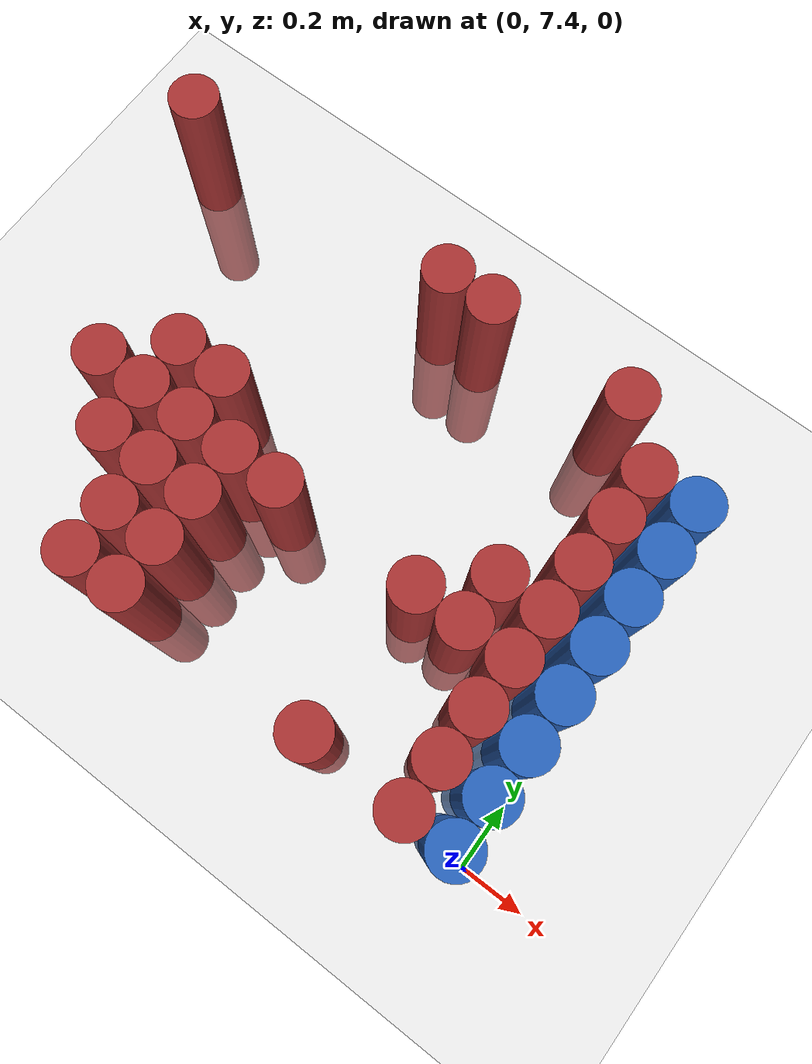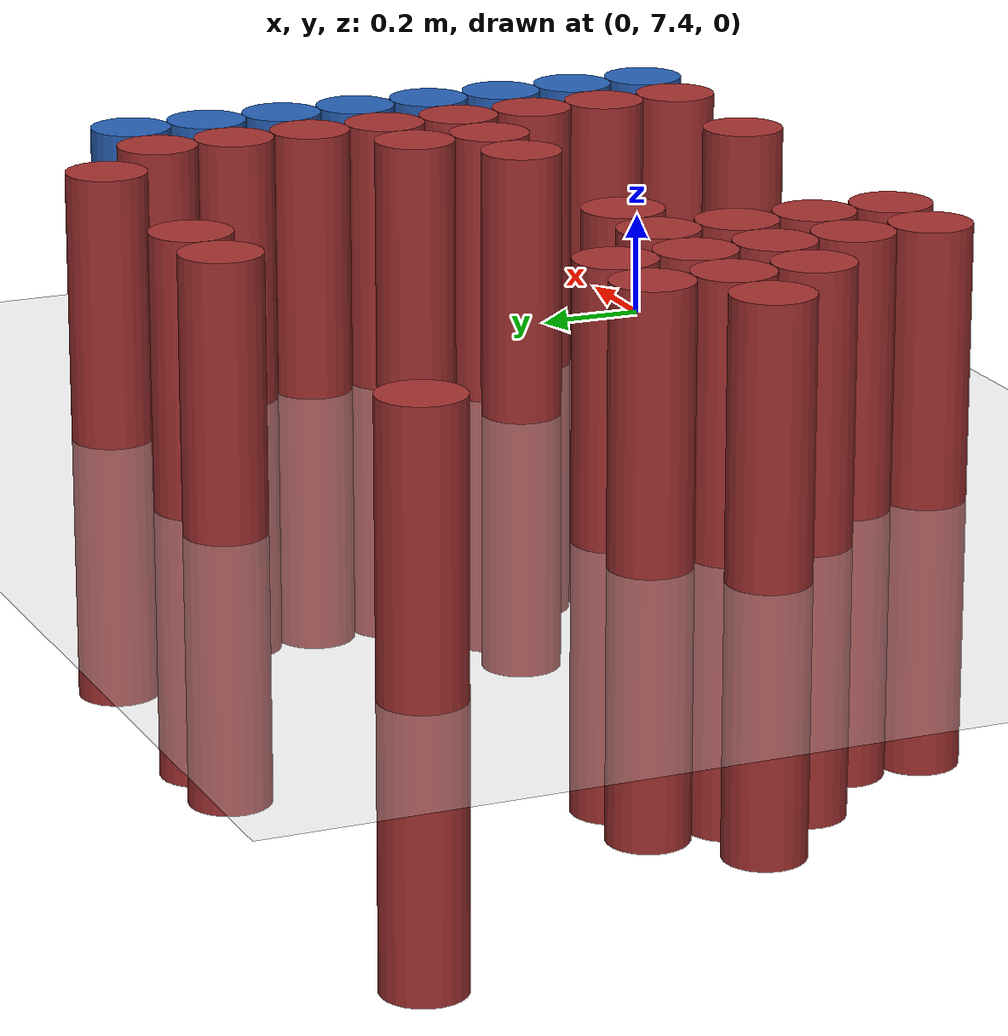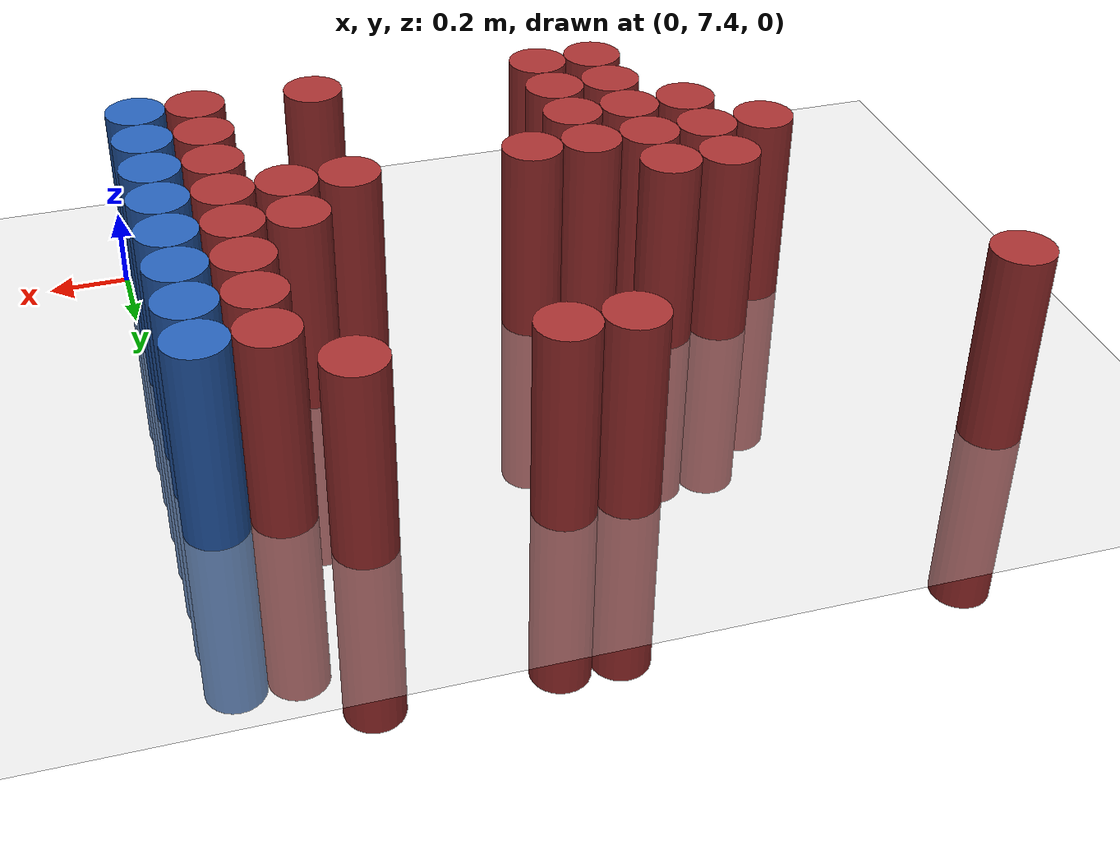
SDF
<sdf version="1.6">
 <world name="default">
  <model name="ground_plane">
   <static>1</static>
   <link name="link">
    <collision name="collision">
     <geometry><plane><normal>0 0 1</normal><size>100 100</size></plane></geometry>
     <surface><friction><ode><mu>100</mu><mu2>50</mu2></ode></friction></surface>
    </collision>
    <visual name="visual">
     <cast_shadows>0</cast_shadows>
     <geometry><plane><normal>0 0 1</normal><size>100 100</size></plane></geometry>
     <material>
      <script><uri>file://media/materials/scripts/gazebo.material</uri><name>Gazebo/Grey</name></script>
     </material>
    </visual>
   </link>
  </model>
  <model name="unit_cylinder_200">
   <static>1</static>
   <pose>-1.875000 8.625000 0.000000 0.000000 0.000000 0.000000</pose>
   <link name="link">
    <inertial>
     <mass>1</mass>
     <inertia><ixx>0.145833</ixx><ixy>0</ixy><ixz>0</ixz><iyy>0.145833</iyy><iyz>0</iyz><izz>0.125</izz></inertia>
    </inertial>
    <collision name="collision">
     <geometry><cylinder><radius>0.075000</radius><length>1</length></cylinder></geometry>
    </collision>
    <visual name="visual">
     <geometry><cylinder><radius>0.075000</radius><length>1</length></cylinder></geometry>
     <material>
      <ambient>0.648000 0.192000 0.192000 1</ambient>
      <diffuse>0.648000 0.192000 0.192000 1</diffuse>
     </material>
     <material>
      <script><name>Gazebo/Grey</name><uri>file://media/materials/scripts/gazebo.material</uri></script>
     </material>
    </visual>
    <sensor name="sensor_contact" type="contact"><contact><collision>collision</collision></contact></sensor>
   </link>
   <plugin filename="gz-sim-touchplugin-system" name="gz::sim::systems::TouchPlugin">
    <target>robot</target>
    <namespace>robot</namespace>
    <time>0.001</time>
    <enabled>true</enabled>
   </plugin>
  </model>
  <model name="unit_cylinder_213">
   <static>1</static>
   <pose>-1.575000 7.875000 0.000000 0.000000 0.000000 0.000000</pose>
   <link name="link">
    <inertial>
     <mass>1</mass>
     <inertia><ixx>0.145833</ixx><ixy>0</ixy><ixz>0</ixz><iyy>0.145833</iyy><iyz>0</iyz><izz>0.125</izz></inertia>
    </inertial>
    <collision name="collision">
     <geometry><cylinder><radius>0.075000</radius><length>1</length></cylinder></geometry>
    </collision>
    <visual name="visual">
     <geometry><cylinder><radius>0.075000</radius><length>1</length></cylinder></geometry>
     <material>
      <ambient>0.648000 0.192000 0.192000 1</ambient>
      <diffuse>0.648000 0.192000 0.192000 1</diffuse>
     </material>
     <material>
      <script><name>Gazebo/Grey</name><uri>file://media/materials/scripts/gazebo.material</uri></script>
     </material>
    </visual>
    <sensor name="sensor_contact" type="contact"><contact><collision>collision</collision></contact></sensor>
   </link>
   <plugin filename="gz-sim-touchplugin-system" name="gz::sim::systems::TouchPlugin">
    <target>robot</target>
    <namespace>robot</namespace>
    <time>0.001</time>
    <enabled>true</enabled>
   </plugin>
  </model>
  <model name="unit_cylinder_223">
   <static>1</static>
   <pose>-1.425000 7.725000 0.000000 0.000000 0.000000 0.000000</pose>
   <link name="link">
    <inertial>
     <mass>1</mass>
     <inertia><ixx>0.145833</ixx><ixy>0</ixy><ixz>0</ixz><iyy>0.145833</iyy><iyz>0</iyz><izz>0.125</izz></inertia>
    </inertial>
    <collision name="collision">
     <geometry><cylinder><radius>0.075000</radius><length>1</length></cylinder></geometry>
    </collision>
    <visual name="visual">
     <geometry><cylinder><radius>0.075000</radius><length>1</length></cylinder></geometry>
     <material>
      <ambient>0.648000 0.192000 0.192000 1</ambient>
      <diffuse>0.648000 0.192000 0.192000 1</diffuse>
     </material>
     <material>
      <script><name>Gazebo/Grey</name><uri>file://media/materials/scripts/gazebo.material</uri></script>
     </material>
    </visual>
    <sensor name="sensor_contact" type="contact"><contact><collision>collision</collision></contact></sensor>
   </link>
   <plugin filename="gz-sim-touchplugin-system" name="gz::sim::systems::TouchPlugin">
    <target>robot</target>
    <namespace>robot</namespace>
    <time>0.001</time>
    <enabled>true</enabled>
   </plugin>
  </model>
  <model name="unit_cylinder_224">
   <static>1</static>
   <pose>-1.425000 7.875000 0.000000 0.000000 0.000000 0.000000</pose>
   <link name="link">
    <inertial>
     <mass>1</mass>
     <inertia><ixx>0.145833</ixx><ixy>0</ixy><ixz>0</ixz><iyy>0.145833</iyy><iyz>0</iyz><izz>0.125</izz></inertia>
    </inertial>
    <collision name="collision">
     <geometry><cylinder><radius>0.075000</radius><length>1</length></cylinder></geometry>
    </collision>
    <visual name="visual">
     <geometry><cylinder><radius>0.075000</radius><length>1</length></cylinder></geometry>
     <material>
      <ambient>0.648000 0.192000 0.192000 1</ambient>
      <diffuse>0.648000 0.192000 0.192000 1</diffuse>
     </material>
     <material>
      <script><name>Gazebo/Grey</name><uri>file://media/materials/scripts/gazebo.material</uri></script>
     </material>
    </visual>
    <sensor name="sensor_contact" type="contact"><contact><collision>collision</collision></contact></sensor>
   </link>
   <plugin filename="gz-sim-touchplugin-system" name="gz::sim::systems::TouchPlugin">
    <target>robot</target>
    <namespace>robot</namespace>
    <time>0.001</time>
    <enabled>true</enabled>
   </plugin>
  </model>
  <model name="unit_cylinder_225">
   <static>1</static>
   <pose>-1.425000 8.025000 0.000000 0.000000 0.000000 0.000000</pose>
   <link name="link">
    <inertial>
     <mass>1</mass>
     <inertia><ixx>0.145833</ixx><ixy>0</ixy><ixz>0</ixz><iyy>0.145833</iyy><iyz>0</iyz><izz>0.125</izz></inertia>
    </inertial>
    <collision name="collision">
     <geometry><cylinder><radius>0.075000</radius><length>1</length></cylinder></geometry>
    </collision>
    <visual name="visual">
     <geometry><cylinder><radius>0.075000</radius><length>1</length></cylinder></geometry>
     <material>
      <ambient>0.648000 0.192000 0.192000 1</ambient>
      <diffuse>0.648000 0.192000 0.192000 1</diffuse>
     </material>
     <material>
      <script><name>Gazebo/Grey</name><uri>file://media/materials/scripts/gazebo.material</uri></script>
     </material>
    </visual>
    <sensor name="sensor_contact" type="contact"><contact><collision>collision</collision></contact></sensor>
   </link>
   <plugin filename="gz-sim-touchplugin-system" name="gz::sim::systems::TouchPlugin">
    <target>robot</target>
    <namespace>robot</namespace>
    <time>0.001</time>
    <enabled>true</enabled>
   </plugin>
  </model>
  <model name="unit_cylinder_231">
   <static>1</static>
   <pose>-1.275000 7.425000 0.000000 0.000000 0.000000 0.000000</pose>
   <link name="link">
    <inertial>
     <mass>1</mass>
     <inertia><ixx>0.145833</ixx><ixy>0</ixy><ixz>0</ixz><iyy>0.145833</iyy><iyz>0</iyz><izz>0.125</izz></inertia>
    </inertial>
    <collision name="collision">
     <geometry><cylinder><radius>0.075000</radius><length>1</length></cylinder></geometry>
    </collision>
    <visual name="visual">
     <geometry><cylinder><radius>0.075000</radius><length>1</length></cylinder></geometry>
     <material>
      <ambient>0.648000 0.192000 0.192000 1</ambient>
      <diffuse>0.648000 0.192000 0.192000 1</diffuse>
     </material>
     <material>
      <script><name>Gazebo/Grey</name><uri>file://media/materials/scripts/gazebo.material</uri></script>
     </material>
    </visual>
    <sensor name="sensor_contact" type="contact"><contact><collision>collision</collision></contact></sensor>
   </link>
   <plugin filename="gz-sim-touchplugin-system" name="gz::sim::systems::TouchPlugin">
    <target>robot</target>
    <namespace>robot</namespace>
    <time>0.001</time>
    <enabled>true</enabled>
   </plugin>
  </model>
  <model name="unit_cylinder_232">
   <static>1</static>
   <pose>-1.275000 7.575000 0.000000 0.000000 0.000000 0.000000</pose>
   <link name="link">
    <inertial>
     <mass>1</mass>
     <inertia><ixx>0.145833</ixx><ixy>0</ixy><ixz>0</ixz><iyy>0.145833</iyy><iyz>0</iyz><izz>0.125</izz></inertia>
    </inertial>
    <collision name="collision">
     <geometry><cylinder><radius>0.075000</radius><length>1</length></cylinder></geometry>
    </collision>
    <visual name="visual">
     <geometry><cylinder><radius>0.075000</radius><length>1</length></cylinder></geometry>
     <material>
      <ambient>0.648000 0.192000 0.192000 1</ambient>
      <diffuse>0.648000 0.192000 0.192000 1</diffuse>
     </material>
     <material>
      <script><name>Gazebo/Grey</name><uri>file://media/materials/scripts/gazebo.material</uri></script>
     </material>
    </visual>
    <sensor name="sensor_contact" type="contact"><contact><collision>collision</collision></contact></sensor>
   </link>
   <plugin filename="gz-sim-touchplugin-system" name="gz::sim::systems::TouchPlugin">
    <target>robot</target>
    <namespace>robot</namespace>
    <time>0.001</time>
    <enabled>true</enabled>
   </plugin>
  </model>
  <model name="unit_cylinder_233">
   <static>1</static>
   <pose>-1.275000 7.725000 0.000000 0.000000 0.000000 0.000000</pose>
   <link name="link">
    <inertial>
     <mass>1</mass>
     <inertia><ixx>0.145833</ixx><ixy>0</ixy><ixz>0</ixz><iyy>0.145833</iyy><iyz>0</iyz><izz>0.125</izz></inertia>
    </inertial>
    <collision name="collision">
     <geometry><cylinder><radius>0.075000</radius><length>1</length></cylinder></geometry>
    </collision>
    <visual name="visual">
     <geometry><cylinder><radius>0.075000</radius><length>1</length></cylinder></geometry>
     <material>
      <ambient>0.648000 0.192000 0.192000 1</ambient>
      <diffuse>0.648000 0.192000 0.192000 1</diffuse>
     </material>
     <material>
      <script><name>Gazebo/Grey</name><uri>file://media/materials/scripts/gazebo.material</uri></script>
     </material>
    </visual>
    <sensor name="sensor_contact" type="contact"><contact><collision>collision</collision></contact></sensor>
   </link>
   <plugin filename="gz-sim-touchplugin-system" name="gz::sim::systems::TouchPlugin">
    <target>robot</target>
    <namespace>robot</namespace>
    <time>0.001</time>
    <enabled>true</enabled>
   </plugin>
  </model>
  <model name="unit_cylinder_234">
   <static>1</static>
   <pose>-1.275000 7.875000 0.000000 0.000000 0.000000 0.000000</pose>
   <link name="link">
    <inertial>
     <mass>1</mass>
     <inertia><ixx>0.145833</ixx><ixy>0</ixy><ixz>0</ixz><iyy>0.145833</iyy><iyz>0</iyz><izz>0.125</izz></inertia>
    </inertial>
    <collision name="collision">
     <geometry><cylinder><radius>0.075000</radius><length>1</length></cylinder></geometry>
    </collision>
    <visual name="visual">
     <geometry><cylinder><radius>0.075000</radius><length>1</length></cylinder></geometry>
     <material>
      <ambient>0.648000 0.192000 0.192000 1</ambient>
      <diffuse>0.648000 0.192000 0.192000 1</diffuse>
     </material>
     <material>
      <script><name>Gazebo/Grey</name><uri>file://media/materials/scripts/gazebo.material</uri></script>
     </material>
    </visual>
    <sensor name="sensor_contact" type="contact"><contact><collision>collision</collision></contact></sensor>
   </link>
   <plugin filename="gz-sim-touchplugin-system" name="gz::sim::systems::TouchPlugin">
    <target>robot</target>
    <namespace>robot</namespace>
    <time>0.001</time>
    <enabled>true</enabled>
   </plugin>
  </model>
  <model name="unit_cylinder_235">
   <static>1</static>
   <pose>-1.275000 8.025000 0.000000 0.000000 0.000000 0.000000</pose>
   <link name="link">
    <inertial>
     <mass>1</mass>
     <inertia><ixx>0.145833</ixx><ixy>0</ixy><ixz>0</ixz><iyy>0.145833</iyy><iyz>0</iyz><izz>0.125</izz></inertia>
    </inertial>
    <collision name="collision">
     <geometry><cylinder><radius>0.075000</radius><length>1</length></cylinder></geometry>
    </collision>
    <visual name="visual">
     <geometry><cylinder><radius>0.075000</radius><length>1</length></cylinder></geometry>
     <material>
      <ambient>0.648000 0.192000 0.192000 1</ambient>
      <diffuse>0.648000 0.192000 0.192000 1</diffuse>
     </material>
     <material>
      <script><name>Gazebo/Grey</name><uri>file://media/materials/scripts/gazebo.material</uri></script>
     </material>
    </visual>
    <sensor name="sensor_contact" type="contact"><contact><collision>collision</collision></contact></sensor>
   </link>
   <plugin filename="gz-sim-touchplugin-system" name="gz::sim::systems::TouchPlugin">
    <target>robot</target>
    <namespace>robot</namespace>
    <time>0.001</time>
    <enabled>true</enabled>
   </plugin>
  </model>
  <model name="unit_cylinder_241">
   <static>1</static>
   <pose>-1.125000 7.425000 0.000000 0.000000 0.000000 0.000000</pose>
   <link name="link">
    <inertial>
     <mass>1</mass>
     <inertia><ixx>0.145833</ixx><ixy>0</ixy><ixz>0</ixz><iyy>0.145833</iyy><iyz>0</iyz><izz>0.125</izz></inertia>
    </inertial>
    <collision name="collision">
     <geometry><cylinder><radius>0.075000</radius><length>1</length></cylinder></geometry>
    </collision>
    <visual name="visual">
     <geometry><cylinder><radius>0.075000</radius><length>1</length></cylinder></geometry>
     <material>
      <ambient>0.648000 0.192000 0.192000 1</ambient>
      <diffuse>0.648000 0.192000 0.192000 1</diffuse>
     </material>
     <material>
      <script><name>Gazebo/Grey</name><uri>file://media/materials/scripts/gazebo.material</uri></script>
     </material>
    </visual>
    <sensor name="sensor_contact" type="contact"><contact><collision>collision</collision></contact></sensor>
   </link>
   <plugin filename="gz-sim-touchplugin-system" name="gz::sim::systems::TouchPlugin">
    <target>robot</target>
    <namespace>robot</namespace>
    <time>0.001</time>
    <enabled>true</enabled>
   </plugin>
  </model>
  <model name="unit_cylinder_242">
   <static>1</static>
   <pose>-1.125000 7.575000 0.000000 0.000000 0.000000 0.000000</pose>
   <link name="link">
    <inertial>
     <mass>1</mass>
     <inertia><ixx>0.145833</ixx><ixy>0</ixy><ixz>0</ixz><iyy>0.145833</iyy><iyz>0</iyz><izz>0.125</izz></inertia>
    </inertial>
    <collision name="collision">
     <geometry><cylinder><radius>0.075000</radius><length>1</length></cylinder></geometry>
    </collision>
    <visual name="visual">
     <geometry><cylinder><radius>0.075000</radius><length>1</length></cylinder></geometry>
     <material>
      <ambient>0.648000 0.192000 0.192000 1</ambient>
      <diffuse>0.648000 0.192000 0.192000 1</diffuse>
     </material>
     <material>
      <script><name>Gazebo/Grey</name><uri>file://media/materials/scripts/gazebo.material</uri></script>
     </material>
    </visual>
    <sensor name="sensor_contact" type="contact"><contact><collision>collision</collision></contact></sensor>
   </link>
   <plugin filename="gz-sim-touchplugin-system" name="gz::sim::systems::TouchPlugin">
    <target>robot</target>
    <namespace>robot</namespace>
    <time>0.001</time>
    <enabled>true</enabled>
   </plugin>
  </model>
  <model name="unit_cylinder_243">
   <static>1</static>
   <pose>-1.125000 7.725000 0.000000 0.000000 0.000000 0.000000</pose>
   <link name="link">
    <inertial>
     <mass>1</mass>
     <inertia><ixx>0.145833</ixx><ixy>0</ixy><ixz>0</ixz><iyy>0.145833</iyy><iyz>0</iyz><izz>0.125</izz></inertia>
    </inertial>
    <collision name="collision">
     <geometry><cylinder><radius>0.075000</radius><length>1</length></cylinder></geometry>
    </collision>
    <visual name="visual">
     <geometry><cylinder><radius>0.075000</radius><length>1</length></cylinder></geometry>
     <material>
      <ambient>0.648000 0.192000 0.192000 1</ambient>
      <diffuse>0.648000 0.192000 0.192000 1</diffuse>
     </material>
     <material>
      <script><name>Gazebo/Grey</name><uri>file://media/materials/scripts/gazebo.material</uri></script>
     </material>
    </visual>
    <sensor name="sensor_contact" type="contact"><contact><collision>collision</collision></contact></sensor>
   </link>
   <plugin filename="gz-sim-touchplugin-system" name="gz::sim::systems::TouchPlugin">
    <target>robot</target>
    <namespace>robot</namespace>
    <time>0.001</time>
    <enabled>true</enabled>
   </plugin>
  </model>
  <model name="unit_cylinder_244">
   <static>1</static>
   <pose>-1.125000 7.875000 0.000000 0.000000 0.000000 0.000000</pose>
   <link name="link">
    <inertial>
     <mass>1</mass>
     <inertia><ixx>0.145833</ixx><ixy>0</ixy><ixz>0</ixz><iyy>0.145833</iyy><iyz>0</iyz><izz>0.125</izz></inertia>
    </inertial>
    <collision name="collision">
     <geometry><cylinder><radius>0.075000</radius><length>1</length></cylinder></geometry>
    </collision>
    <visual name="visual">
     <geometry><cylinder><radius>0.075000</radius><length>1</length></cylinder></geometry>
     <material>
      <ambient>0.648000 0.192000 0.192000 1</ambient>
      <diffuse>0.648000 0.192000 0.192000 1</diffuse>
     </material>
     <material>
      <script><name>Gazebo/Grey</name><uri>file://media/materials/scripts/gazebo.material</uri></script>
     </material>
    </visual>
    <sensor name="sensor_contact" type="contact"><contact><collision>collision</collision></contact></sensor>
   </link>
   <plugin filename="gz-sim-touchplugin-system" name="gz::sim::systems::TouchPlugin">
    <target>robot</target>
    <namespace>robot</namespace>
    <time>0.001</time>
    <enabled>true</enabled>
   </plugin>
  </model>
  <model name="unit_cylinder_252">
   <static>1</static>
   <pose>-0.975000 7.875000 0.000000 0.000000 0.000000 0.000000</pose>
   <link name="link">
    <inertial>
     <mass>1</mass>
     <inertia><ixx>0.145833</ixx><ixy>0</ixy><ixz>0</ixz><iyy>0.145833</iyy><iyz>0</iyz><izz>0.125</izz></inertia>
    </inertial>
    <collision name="collision">
     <geometry><cylinder><radius>0.075000</radius><length>1</length></cylinder></geometry>
    </collision>
    <visual name="visual">
     <geometry><cylinder><radius>0.075000</radius><length>1</length></cylinder></geometry>
     <material>
      <ambient>0.648000 0.192000 0.192000 1</ambient>
      <diffuse>0.648000 0.192000 0.192000 1</diffuse>
     </material>
     <material>
      <script><name>Gazebo/Grey</name><uri>file://media/materials/scripts/gazebo.material</uri></script>
     </material>
    </visual>
    <sensor name="sensor_contact" type="contact"><contact><collision>collision</collision></contact></sensor>
   </link>
   <plugin filename="gz-sim-touchplugin-system" name="gz::sim::systems::TouchPlugin">
    <target>robot</target>
    <namespace>robot</namespace>
    <time>0.001</time>
    <enabled>true</enabled>
   </plugin>
  </model>
  <model name="unit_cylinder_253">
   <static>1</static>
   <pose>-0.975000 8.625000 0.000000 0.000000 0.000000 0.000000</pose>
   <link name="link">
    <inertial>
     <mass>1</mass>
     <inertia><ixx>0.145833</ixx><ixy>0</ixy><ixz>0</ixz><iyy>0.145833</iyy><iyz>0</iyz><izz>0.125</izz></inertia>
    </inertial>
    <collision name="collision">
     <geometry><cylinder><radius>0.075000</radius><length>1</length></cylinder></geometry>
    </collision>
    <visual name="visual">
     <geometry><cylinder><radius>0.075000</radius><length>1</length></cylinder></geometry>
     <material>
      <ambient>0.648000 0.192000 0.192000 1</ambient>
      <diffuse>0.648000 0.192000 0.192000 1</diffuse>
     </material>
     <material>
      <script><name>Gazebo/Grey</name><uri>file://media/materials/scripts/gazebo.material</uri></script>
     </material>
    </visual>
    <sensor name="sensor_contact" type="contact"><contact><collision>collision</collision></contact></sensor>
   </link>
   <plugin filename="gz-sim-touchplugin-system" name="gz::sim::systems::TouchPlugin">
    <target>robot</target>
    <namespace>robot</namespace>
    <time>0.001</time>
    <enabled>true</enabled>
   </plugin>
  </model>
  <model name="unit_cylinder_260">
   <static>1</static>
   <pose>-0.825000 8.625000 0.000000 0.000000 0.000000 0.000000</pose>
   <link name="link">
    <inertial>
     <mass>1</mass>
     <inertia><ixx>0.145833</ixx><ixy>0</ixy><ixz>0</ixz><iyy>0.145833</iyy><iyz>0</iyz><izz>0.125</izz></inertia>
    </inertial>
    <collision name="collision">
     <geometry><cylinder><radius>0.075000</radius><length>1</length></cylinder></geometry>
    </collision>
    <visual name="visual">
     <geometry><cylinder><radius>0.075000</radius><length>1</length></cylinder></geometry>
     <material>
      <ambient>0.648000 0.192000 0.192000 1</ambient>
      <diffuse>0.648000 0.192000 0.192000 1</diffuse>
     </material>
     <material>
      <script><name>Gazebo/Grey</name><uri>file://media/materials/scripts/gazebo.material</uri></script>
     </material>
    </visual>
    <sensor name="sensor_contact" type="contact"><contact><collision>collision</collision></contact></sensor>
   </link>
   <plugin filename="gz-sim-touchplugin-system" name="gz::sim::systems::TouchPlugin">
    <target>robot</target>
    <namespace>robot</namespace>
    <time>0.001</time>
    <enabled>true</enabled>
   </plugin>
  </model>
  <model name="unit_cylinder_272">
   <static>1</static>
   <pose>-0.525000 7.425000 0.000000 0.000000 0.000000 0.000000</pose>
   <link name="link">
    <inertial>
     <mass>1</mass>
     <inertia><ixx>0.145833</ixx><ixy>0</ixy><ixz>0</ixz><iyy>0.145833</iyy><iyz>0</iyz><izz>0.125</izz></inertia>
    </inertial>
    <collision name="collision">
     <geometry><cylinder><radius>0.075000</radius><length>1</length></cylinder></geometry>
    </collision>
    <visual name="visual">
     <geometry><cylinder><radius>0.075000</radius><length>1</length></cylinder></geometry>
     <material>
      <ambient>0.648000 0.192000 0.192000 1</ambient>
      <diffuse>0.648000 0.192000 0.192000 1</diffuse>
     </material>
     <material>
      <script><name>Gazebo/Grey</name><uri>file://media/materials/scripts/gazebo.material</uri></script>
     </material>
    </visual>
    <sensor name="sensor_contact" type="contact"><contact><collision>collision</collision></contact></sensor>
   </link>
   <plugin filename="gz-sim-touchplugin-system" name="gz::sim::systems::TouchPlugin">
    <target>robot</target>
    <namespace>robot</namespace>
    <time>0.001</time>
    <enabled>true</enabled>
   </plugin>
  </model>
  <model name="unit_cylinder_273">
   <static>1</static>
   <pose>-0.525000 7.875000 0.000000 0.000000 0.000000 0.000000</pose>
   <link name="link">
    <inertial>
     <mass>1</mass>
     <inertia><ixx>0.145833</ixx><ixy>0</ixy><ixz>0</ixz><iyy>0.145833</iyy><iyz>0</iyz><izz>0.125</izz></inertia>
    </inertial>
    <collision name="collision">
     <geometry><cylinder><radius>0.075000</radius><length>1</length></cylinder></geometry>
    </collision>
    <visual name="visual">
     <geometry><cylinder><radius>0.075000</radius><length>1</length></cylinder></geometry>
     <material>
      <ambient>0.648000 0.192000 0.192000 1</ambient>
      <diffuse>0.648000 0.192000 0.192000 1</diffuse>
     </material>
     <material>
      <script><name>Gazebo/Grey</name><uri>file://media/materials/scripts/gazebo.material</uri></script>
     </material>
    </visual>
    <sensor name="sensor_contact" type="contact"><contact><collision>collision</collision></contact></sensor>
   </link>
   <plugin filename="gz-sim-touchplugin-system" name="gz::sim::systems::TouchPlugin">
    <target>robot</target>
    <namespace>robot</namespace>
    <time>0.001</time>
    <enabled>true</enabled>
   </plugin>
  </model>
  <model name="unit_cylinder_283">
   <static>1</static>
   <pose>-0.375000 7.875000 0.000000 0.000000 0.000000 0.000000</pose>
   <link name="link">
    <inertial>
     <mass>1</mass>
     <inertia><ixx>0.145833</ixx><ixy>0</ixy><ixz>0</ixz><iyy>0.145833</iyy><iyz>0</iyz><izz>0.125</izz></inertia>
    </inertial>
    <collision name="collision">
     <geometry><cylinder><radius>0.075000</radius><length>1</length></cylinder></geometry>
    </collision>
    <visual name="visual">
     <geometry><cylinder><radius>0.075000</radius><length>1</length></cylinder></geometry>
     <material>
      <ambient>0.648000 0.192000 0.192000 1</ambient>
      <diffuse>0.648000 0.192000 0.192000 1</diffuse>
     </material>
     <material>
      <script><name>Gazebo/Grey</name><uri>file://media/materials/scripts/gazebo.material</uri></script>
     </material>
    </visual>
    <sensor name="sensor_contact" type="contact"><contact><collision>collision</collision></contact></sensor>
   </link>
   <plugin filename="gz-sim-touchplugin-system" name="gz::sim::systems::TouchPlugin">
    <target>robot</target>
    <namespace>robot</namespace>
    <time>0.001</time>
    <enabled>true</enabled>
   </plugin>
  </model>
  <model name="unit_cylinder_284">
   <static>1</static>
   <pose>-0.375000 8.025000 0.000000 0.000000 0.000000 0.000000</pose>
   <link name="link">
    <inertial>
     <mass>1</mass>
     <inertia><ixx>0.145833</ixx><ixy>0</ixy><ixz>0</ixz><iyy>0.145833</iyy><iyz>0</iyz><izz>0.125</izz></inertia>
    </inertial>
    <collision name="collision">
     <geometry><cylinder><radius>0.075000</radius><length>1</length></cylinder></geometry>
    </collision>
    <visual name="visual">
     <geometry><cylinder><radius>0.075000</radius><length>1</length></cylinder></geometry>
     <material>
      <ambient>0.648000 0.192000 0.192000 1</ambient>
      <diffuse>0.648000 0.192000 0.192000 1</diffuse>
     </material>
     <material>
      <script><name>Gazebo/Grey</name><uri>file://media/materials/scripts/gazebo.material</uri></script>
     </material>
    </visual>
    <sensor name="sensor_contact" type="contact"><contact><collision>collision</collision></contact></sensor>
   </link>
   <plugin filename="gz-sim-touchplugin-system" name="gz::sim::systems::TouchPlugin">
    <target>robot</target>
    <namespace>robot</namespace>
    <time>0.001</time>
    <enabled>true</enabled>
   </plugin>
  </model>
  <model name="unit_cylinder_285">
   <static>1</static>
   <pose>-0.375000 8.625000 0.000000 0.000000 0.000000 0.000000</pose>
   <link name="link">
    <inertial>
     <mass>1</mass>
     <inertia><ixx>0.145833</ixx><ixy>0</ixy><ixz>0</ixz><iyy>0.145833</iyy><iyz>0</iyz><izz>0.125</izz></inertia>
    </inertial>
    <collision name="collision">
     <geometry><cylinder><radius>0.075000</radius><length>1</length></cylinder></geometry>
    </collision>
    <visual name="visual">
     <geometry><cylinder><radius>0.075000</radius><length>1</length></cylinder></geometry>
     <material>
      <ambient>0.648000 0.192000 0.192000 1</ambient>
      <diffuse>0.648000 0.192000 0.192000 1</diffuse>
     </material>
     <material>
      <script><name>Gazebo/Grey</name><uri>file://media/materials/scripts/gazebo.material</uri></script>
     </material>
    </visual>
    <sensor name="sensor_contact" type="contact"><contact><collision>collision</collision></contact></sensor>
   </link>
   <plugin filename="gz-sim-touchplugin-system" name="gz::sim::systems::TouchPlugin">
    <target>robot</target>
    <namespace>robot</namespace>
    <time>0.001</time>
    <enabled>true</enabled>
   </plugin>
  </model>
  <model name="unit_cylinder_302">
   <static>1</static>
   <pose>-0.225000 7.425000 0.000000 0.000000 0.000000 0.000000</pose>
   <link name="link">
    <inertial>
     <mass>1</mass>
     <inertia><ixx>0.145833</ixx><ixy>0</ixy><ixz>0</ixz><iyy>0.145833</iyy><iyz>0</iyz><izz>0.125</izz></inertia>
    </inertial>
    <collision name="collision">
     <geometry><cylinder><radius>0.075000</radius><length>1</length></cylinder></geometry>
    </collision>
    <visual name="visual">
     <geometry><cylinder><radius>0.075000</radius><length>1</length></cylinder></geometry>
     <material>
      <ambient>0.648000 0.192000 0.192000 1</ambient>
      <diffuse>0.648000 0.192000 0.192000 1</diffuse>
     </material>
     <material>
      <script><name>Gazebo/Grey</name><uri>file://media/materials/scripts/gazebo.material</uri></script>
     </material>
    </visual>
    <sensor name="sensor_contact" type="contact"><contact><collision>collision</collision></contact></sensor>
   </link>
   <plugin filename="gz-sim-touchplugin-system" name="gz::sim::systems::TouchPlugin">
    <target>robot</target>
    <namespace>robot</namespace>
    <time>0.001</time>
    <enabled>true</enabled>
   </plugin>
  </model>
  <model name="unit_cylinder_303">
   <static>1</static>
   <pose>-0.225000 7.575000 0.000000 0.000000 0.000000 0.000000</pose>
   <link name="link">
    <inertial>
     <mass>1</mass>
     <inertia><ixx>0.145833</ixx><ixy>0</ixy><ixz>0</ixz><iyy>0.145833</iyy><iyz>0</iyz><izz>0.125</izz></inertia>
    </inertial>
    <collision name="collision">
     <geometry><cylinder><radius>0.075000</radius><length>1</length></cylinder></geometry>
    </collision>
    <visual name="visual">
     <geometry><cylinder><radius>0.075000</radius><length>1</length></cylinder></geometry>
     <material>
      <ambient>0.648000 0.192000 0.192000 1</ambient>
      <diffuse>0.648000 0.192000 0.192000 1</diffuse>
     </material>
     <material>
      <script><name>Gazebo/Grey</name><uri>file://media/materials/scripts/gazebo.material</uri></script>
     </material>
    </visual>
    <sensor name="sensor_contact" type="contact"><contact><collision>collision</collision></contact></sensor>
   </link>
   <plugin filename="gz-sim-touchplugin-system" name="gz::sim::systems::TouchPlugin">
    <target>robot</target>
    <namespace>robot</namespace>
    <time>0.001</time>
    <enabled>true</enabled>
   </plugin>
  </model>
  <model name="unit_cylinder_304">
   <static>1</static>
   <pose>-0.225000 7.725000 0.000000 0.000000 0.000000 0.000000</pose>
   <link name="link">
    <inertial>
     <mass>1</mass>
     <inertia><ixx>0.145833</ixx><ixy>0</ixy><ixz>0</ixz><iyy>0.145833</iyy><iyz>0</iyz><izz>0.125</izz></inertia>
    </inertial>
    <collision name="collision">
     <geometry><cylinder><radius>0.075000</radius><length>1</length></cylinder></geometry>
    </collision>
    <visual name="visual">
     <geometry><cylinder><radius>0.075000</radius><length>1</length></cylinder></geometry>
     <material>
      <ambient>0.648000 0.192000 0.192000 1</ambient>
      <diffuse>0.648000 0.192000 0.192000 1</diffuse>
     </material>
     <material>
      <script><name>Gazebo/Grey</name><uri>file://media/materials/scripts/gazebo.material</uri></script>
     </material>
    </visual>
    <sensor name="sensor_contact" type="contact"><contact><collision>collision</collision></contact></sensor>
   </link>
   <plugin filename="gz-sim-touchplugin-system" name="gz::sim::systems::TouchPlugin">
    <target>robot</target>
    <namespace>robot</namespace>
    <time>0.001</time>
    <enabled>true</enabled>
   </plugin>
  </model>
  <model name="unit_cylinder_305">
   <static>1</static>
   <pose>-0.225000 7.875000 0.000000 0.000000 0.000000 0.000000</pose>
   <link name="link">
    <inertial>
     <mass>1</mass>
     <inertia><ixx>0.145833</ixx><ixy>0</ixy><ixz>0</ixz><iyy>0.145833</iyy><iyz>0</iyz><izz>0.125</izz></inertia>
    </inertial>
    <collision name="collision">
     <geometry><cylinder><radius>0.075000</radius><length>1</length></cylinder></geometry>
    </collision>
    <visual name="visual">
     <geometry><cylinder><radius>0.075000</radius><length>1</length></cylinder></geometry>
     <material>
      <ambient>0.648000 0.192000 0.192000 1</ambient>
      <diffuse>0.648000 0.192000 0.192000 1</diffuse>
     </material>
     <material>
      <script><name>Gazebo/Grey</name><uri>file://media/materials/scripts/gazebo.material</uri></script>
     </material>
    </visual>
    <sensor name="sensor_contact" type="contact"><contact><collision>collision</collision></contact></sensor>
   </link>
   <plugin filename="gz-sim-touchplugin-system" name="gz::sim::systems::TouchPlugin">
    <target>robot</target>
    <namespace>robot</namespace>
    <time>0.001</time>
    <enabled>true</enabled>
   </plugin>
  </model>
  <model name="unit_cylinder_306">
   <static>1</static>
   <pose>-0.225000 8.025000 0.000000 0.000000 0.000000 0.000000</pose>
   <link name="link">
    <inertial>
     <mass>1</mass>
     <inertia><ixx>0.145833</ixx><ixy>0</ixy><ixz>0</ixz><iyy>0.145833</iyy><iyz>0</iyz><izz>0.125</izz></inertia>
    </inertial>
    <collision name="collision">
     <geometry><cylinder><radius>0.075000</radius><length>1</length></cylinder></geometry>
    </collision>
    <visual name="visual">
     <geometry><cylinder><radius>0.075000</radius><length>1</length></cylinder></geometry>
     <material>
      <ambient>0.648000 0.192000 0.192000 1</ambient>
      <diffuse>0.648000 0.192000 0.192000 1</diffuse>
     </material>
     <material>
      <script><name>Gazebo/Grey</name><uri>file://media/materials/scripts/gazebo.material</uri></script>
     </material>
    </visual>
    <sensor name="sensor_contact" type="contact"><contact><collision>collision</collision></contact></sensor>
   </link>
   <plugin filename="gz-sim-touchplugin-system" name="gz::sim::systems::TouchPlugin">
    <target>robot</target>
    <namespace>robot</namespace>
    <time>0.001</time>
    <enabled>true</enabled>
   </plugin>
  </model>
  <model name="unit_cylinder_307">
   <static>1</static>
   <pose>-0.225000 8.175000 0.000000 0.000000 0.000000 0.000000</pose>
   <link name="link">
    <inertial>
     <mass>1</mass>
     <inertia><ixx>0.145833</ixx><ixy>0</ixy><ixz>0</ixz><iyy>0.145833</iyy><iyz>0</iyz><izz>0.125</izz></inertia>
    </inertial>
    <collision name="collision">
     <geometry><cylinder><radius>0.075000</radius><length>1</length></cylinder></geometry>
    </collision>
    <visual name="visual">
     <geometry><cylinder><radius>0.075000</radius><length>1</length></cylinder></geometry>
     <material>
      <ambient>0.648000 0.192000 0.192000 1</ambient>
      <diffuse>0.648000 0.192000 0.192000 1</diffuse>
     </material>
     <material>
      <script><name>Gazebo/Grey</name><uri>file://media/materials/scripts/gazebo.material</uri></script>
     </material>
    </visual>
    <sensor name="sensor_contact" type="contact"><contact><collision>collision</collision></contact></sensor>
   </link>
   <plugin filename="gz-sim-touchplugin-system" name="gz::sim::systems::TouchPlugin">
    <target>robot</target>
    <namespace>robot</namespace>
    <time>0.001</time>
    <enabled>true</enabled>
   </plugin>
  </model>
  <model name="unit_cylinder_308">
   <static>1</static>
   <pose>-0.225000 8.325000 0.000000 0.000000 0.000000 0.000000</pose>
   <link name="link">
    <inertial>
     <mass>1</mass>
     <inertia><ixx>0.145833</ixx><ixy>0</ixy><ixz>0</ixz><iyy>0.145833</iyy><iyz>0</iyz><izz>0.125</izz></inertia>
    </inertial>
    <collision name="collision">
     <geometry><cylinder><radius>0.075000</radius><length>1</length></cylinder></geometry>
    </collision>
    <visual name="visual">
     <geometry><cylinder><radius>0.075000</radius><length>1</length></cylinder></geometry>
     <material>
      <ambient>0.648000 0.192000 0.192000 1</ambient>
      <diffuse>0.648000 0.192000 0.192000 1</diffuse>
     </material>
     <material>
      <script><name>Gazebo/Grey</name><uri>file://media/materials/scripts/gazebo.material</uri></script>
     </material>
    </visual>
    <sensor name="sensor_contact" type="contact"><contact><collision>collision</collision></contact></sensor>
   </link>
   <plugin filename="gz-sim-touchplugin-system" name="gz::sim::systems::TouchPlugin">
    <target>robot</target>
    <namespace>robot</namespace>
    <time>0.001</time>
    <enabled>true</enabled>
   </plugin>
  </model>
  <model name="unit_cylinder_309">
   <static>1</static>
   <pose>-0.225000 8.475000 0.000000 0.000000 0.000000 0.000000</pose>
   <link name="link">
    <inertial>
     <mass>1</mass>
     <inertia><ixx>0.145833</ixx><ixy>0</ixy><ixz>0</ixz><iyy>0.145833</iyy><iyz>0</iyz><izz>0.125</izz></inertia>
    </inertial>
    <collision name="collision">
     <geometry><cylinder><radius>0.075000</radius><length>1</length></cylinder></geometry>
    </collision>
    <visual name="visual">
     <geometry><cylinder><radius>0.075000</radius><length>1</length></cylinder></geometry>
     <material>
      <ambient>0.648000 0.192000 0.192000 1</ambient>
      <diffuse>0.648000 0.192000 0.192000 1</diffuse>
     </material>
     <material>
      <script><name>Gazebo/Grey</name><uri>file://media/materials/scripts/gazebo.material</uri></script>
     </material>
    </visual>
    <sensor name="sensor_contact" type="contact"><contact><collision>collision</collision></contact></sensor>
   </link>
   <plugin filename="gz-sim-touchplugin-system" name="gz::sim::systems::TouchPlugin">
    <target>robot</target>
    <namespace>robot</namespace>
    <time>0.001</time>
    <enabled>true</enabled>
   </plugin>
  </model>
  <model name="unit_cylinder_332">
   <static>1</static>
   <pose>-0.075000 7.425000 0.000000 0.000000 0.000000 0.000000</pose>
   <link name="link">
    <inertial>
     <mass>1</mass>
     <inertia><ixx>0.145833</ixx><ixy>0</ixy><ixz>0</ixz><iyy>0.145833</iyy><iyz>0</iyz><izz>0.125</izz></inertia>
    </inertial>
    <collision name="collision">
     <geometry><cylinder><radius>0.075000</radius><length>1</length></cylinder></geometry>
    </collision>
    <visual name="visual">
     <geometry><cylinder><radius>0.075000</radius><length>1</length></cylinder></geometry>
     <material>
      <ambient>0.152000 0.379000 0.720000 1</ambient>
      <diffuse>0.152000 0.379000 0.720000 1</diffuse>
     </material>
     <material>
      <script><name>Gazebo/Grey</name><uri>file://media/materials/scripts/gazebo.material</uri></script>
     </material>
    </visual>
    <sensor name="sensor_contact" type="contact"><contact><collision>collision</collision></contact></sensor>
   </link>
   <plugin filename="gz-sim-touchplugin-system" name="gz::sim::systems::TouchPlugin">
    <target>robot</target>
    <namespace>robot</namespace>
    <time>0.001</time>
    <enabled>true</enabled>
   </plugin>
  </model>
  <model name="unit_cylinder_333">
   <static>1</static>
   <pose>-0.075000 7.575000 0.000000 0.000000 0.000000 0.000000</pose>
   <link name="link">
    <inertial>
     <mass>1</mass>
     <inertia><ixx>0.145833</ixx><ixy>0</ixy><ixz>0</ixz><iyy>0.145833</iyy><iyz>0</iyz><izz>0.125</izz></inertia>
    </inertial>
    <collision name="collision">
     <geometry><cylinder><radius>0.075000</radius><length>1</length></cylinder></geometry>
    </collision>
    <visual name="visual">
     <geometry><cylinder><radius>0.075000</radius><length>1</length></cylinder></geometry>
     <material>
      <ambient>0.152000 0.379000 0.720000 1</ambient>
      <diffuse>0.152000 0.379000 0.720000 1</diffuse>
     </material>
     <material>
      <script><name>Gazebo/Grey</name><uri>file://media/materials/scripts/gazebo.material</uri></script>
     </material>
    </visual>
    <sensor name="sensor_contact" type="contact"><contact><collision>collision</collision></contact></sensor>
   </link>
   <plugin filename="gz-sim-touchplugin-system" name="gz::sim::systems::TouchPlugin">
    <target>robot</target>
    <namespace>robot</namespace>
    <time>0.001</time>
    <enabled>true</enabled>
   </plugin>
  </model>
  <model name="unit_cylinder_334">
   <static>1</static>
   <pose>-0.075000 7.725000 0.000000 0.000000 0.000000 0.000000</pose>
   <link name="link">
    <inertial>
     <mass>1</mass>
     <inertia><ixx>0.145833</ixx><ixy>0</ixy><ixz>0</ixz><iyy>0.145833</iyy><iyz>0</iyz><izz>0.125</izz></inertia>
    </inertial>
    <collision name="collision">
     <geometry><cylinder><radius>0.075000</radius><length>1</length></cylinder></geometry>
    </collision>
    <visual name="visual">
     <geometry><cylinder><radius>0.075000</radius><length>1</length></cylinder></geometry>
     <material>
      <ambient>0.152000 0.379000 0.720000 1</ambient>
      <diffuse>0.152000 0.379000 0.720000 1</diffuse>
     </material>
     <material>
      <script><name>Gazebo/Grey</name><uri>file://media/materials/scripts/gazebo.material</uri></script>
     </material>
    </visual>
    <sensor name="sensor_contact" type="contact"><contact><collision>collision</collision></contact></sensor>
   </link>
   <plugin filename="gz-sim-touchplugin-system" name="gz::sim::systems::TouchPlugin">
    <target>robot</target>
    <namespace>robot</namespace>
    <time>0.001</time>
    <enabled>true</enabled>
   </plugin>
  </model>
  <model name="unit_cylinder_335">
   <static>1</static>
   <pose>-0.075000 7.875000 0.000000 0.000000 0.000000 0.000000</pose>
   <link name="link">
    <inertial>
     <mass>1</mass>
     <inertia><ixx>0.145833</ixx><ixy>0</ixy><ixz>0</ixz><iyy>0.145833</iyy><iyz>0</iyz><izz>0.125</izz></inertia>
    </inertial>
    <collision name="collision">
     <geometry><cylinder><radius>0.075000</radius><length>1</length></cylinder></geometry>
    </collision>
    <visual name="visual">
     <geometry><cylinder><radius>0.075000</radius><length>1</length></cylinder></geometry>
     <material>
      <ambient>0.152000 0.379000 0.720000 1</ambient>
      <diffuse>0.152000 0.379000 0.720000 1</diffuse>
     </material>
     <material>
      <script><name>Gazebo/Grey</name><uri>file://media/materials/scripts/gazebo.material</uri></script>
     </material>
    </visual>
    <sensor name="sensor_contact" type="contact"><contact><collision>collision</collision></contact></sensor>
   </link>
   <plugin filename="gz-sim-touchplugin-system" name="gz::sim::systems::TouchPlugin">
    <target>robot</target>
    <namespace>robot</namespace>
    <time>0.001</time>
    <enabled>true</enabled>
   </plugin>
  </model>
  <model name="unit_cylinder_336">
   <static>1</static>
   <pose>-0.075000 8.025000 0.000000 0.000000 0.000000 0.000000</pose>
   <link name="link">
    <inertial>
     <mass>1</mass>
     <inertia><ixx>0.145833</ixx><ixy>0</ixy><ixz>0</ixz><iyy>0.145833</iyy><iyz>0</iyz><izz>0.125</izz></inertia>
    </inertial>
    <collision name="collision">
     <geometry><cylinder><radius>0.075000</radius><length>1</length></cylinder></geometry>
    </collision>
    <visual name="visual">
     <geometry><cylinder><radius>0.075000</radius><length>1</length></cylinder></geometry>
     <material>
      <ambient>0.152000 0.379000 0.720000 1</ambient>
      <diffuse>0.152000 0.379000 0.720000 1</diffuse>
     </material>
     <material>
      <script><name>Gazebo/Grey</name><uri>file://media/materials/scripts/gazebo.material</uri></script>
     </material>
    </visual>
    <sensor name="sensor_contact" type="contact"><contact><collision>collision</collision></contact></sensor>
   </link>
   <plugin filename="gz-sim-touchplugin-system" name="gz::sim::systems::TouchPlugin">
    <target>robot</target>
    <namespace>robot</namespace>
    <time>0.001</time>
    <enabled>true</enabled>
   </plugin>
  </model>
  <model name="unit_cylinder_337">
   <static>1</static>
   <pose>-0.075000 8.175000 0.000000 0.000000 0.000000 0.000000</pose>
   <link name="link">
    <inertial>
     <mass>1</mass>
     <inertia><ixx>0.145833</ixx><ixy>0</ixy><ixz>0</ixz><iyy>0.145833</iyy><iyz>0</iyz><izz>0.125</izz></inertia>
    </inertial>
    <collision name="collision">
     <geometry><cylinder><radius>0.075000</radius><length>1</length></cylinder></geometry>
    </collision>
    <visual name="visual">
     <geometry><cylinder><radius>0.075000</radius><length>1</length></cylinder></geometry>
     <material>
      <ambient>0.152000 0.379000 0.720000 1</ambient>
      <diffuse>0.152000 0.379000 0.720000 1</diffuse>
     </material>
     <material>
      <script><name>Gazebo/Grey</name><uri>file://media/materials/scripts/gazebo.material</uri></script>
     </material>
    </visual>
    <sensor name="sensor_contact" type="contact"><contact><collision>collision</collision></contact></sensor>
   </link>
   <plugin filename="gz-sim-touchplugin-system" name="gz::sim::systems::TouchPlugin">
    <target>robot</target>
    <namespace>robot</namespace>
    <time>0.001</time>
    <enabled>true</enabled>
   </plugin>
  </model>
  <model name="unit_cylinder_338">
   <static>1</static>
   <pose>-0.075000 8.325000 0.000000 0.000000 0.000000 0.000000</pose>
   <link name="link">
    <inertial>
     <mass>1</mass>
     <inertia><ixx>0.145833</ixx><ixy>0</ixy><ixz>0</ixz><iyy>0.145833</iyy><iyz>0</iyz><izz>0.125</izz></inertia>
    </inertial>
    <collision name="collision">
     <geometry><cylinder><radius>0.075000</radius><length>1</length></cylinder></geometry>
    </collision>
    <visual name="visual">
     <geometry><cylinder><radius>0.075000</radius><length>1</length></cylinder></geometry>
     <material>
      <ambient>0.152000 0.379000 0.720000 1</ambient>
      <diffuse>0.152000 0.379000 0.720000 1</diffuse>
     </material>
     <material>
      <script><name>Gazebo/Grey</name><uri>file://media/materials/scripts/gazebo.material</uri></script>
     </material>
    </visual>
    <sensor name="sensor_contact" type="contact"><contact><collision>collision</collision></contact></sensor>
   </link>
   <plugin filename="gz-sim-touchplugin-system" name="gz::sim::systems::TouchPlugin">
    <target>robot</target>
    <namespace>robot</namespace>
    <time>0.001</time>
    <enabled>true</enabled>
   </plugin>
  </model>
  <model name="unit_cylinder_339">
   <static>1</static>
   <pose>-0.075000 8.475000 0.000000 0.000000 0.000000 0.000000</pose>
   <link name="link">
    <inertial>
     <mass>1</mass>
     <inertia><ixx>0.145833</ixx><ixy>0</ixy><ixz>0</ixz><iyy>0.145833</iyy><iyz>0</iyz><izz>0.125</izz></inertia>
    </inertial>
    <collision name="collision">
     <geometry><cylinder><radius>0.075000</radius><length>1</length></cylinder></geometry>
    </collision>
    <visual name="visual">
     <geometry><cylinder><radius>0.075000</radius><length>1</length></cylinder></geometry>
     <material>
      <ambient>0.152000 0.379000 0.720000 1</ambient>
      <diffuse>0.152000 0.379000 0.720000 1</diffuse>
     </material>
     <material>
      <script><name>Gazebo/Grey</name><uri>file://media/materials/scripts/gazebo.material</uri></script>
     </material>
    </visual>
    <sensor name="sensor_contact" type="contact"><contact><collision>collision</collision></contact></sensor>
   </link>
   <plugin filename="gz-sim-touchplugin-system" name="gz::sim::systems::TouchPlugin">
    <target>robot</target>
    <namespace>robot</namespace>
    <time>0.001</time>
    <enabled>true</enabled>
   </plugin>
  </model>
 </world>
</sdf>
